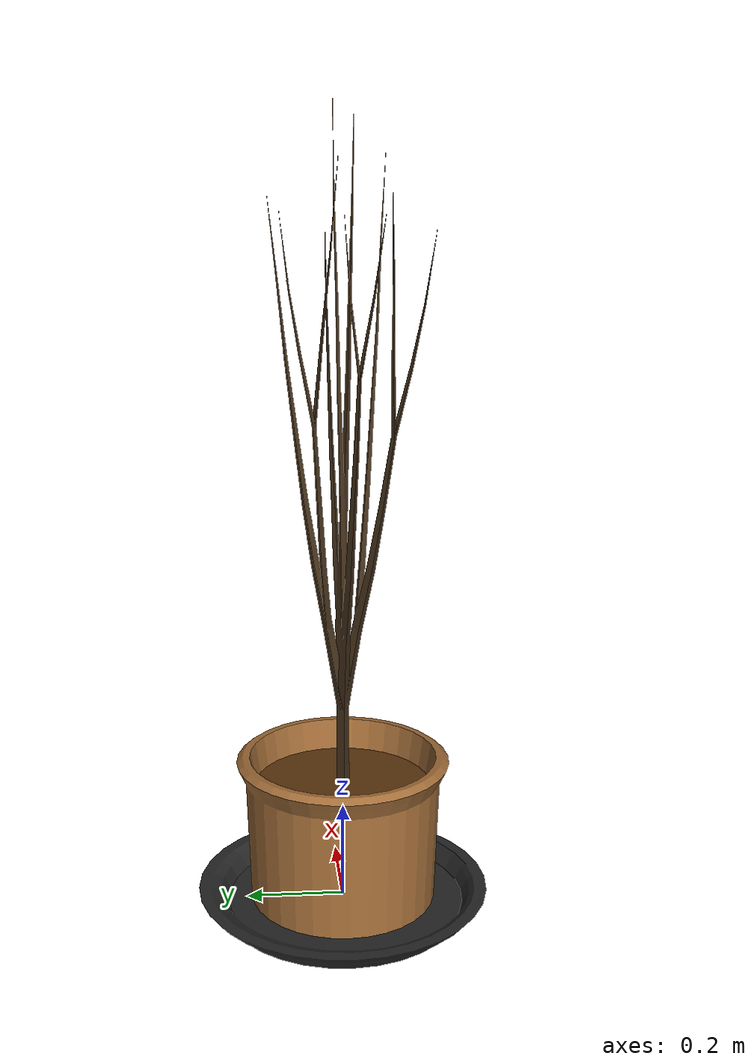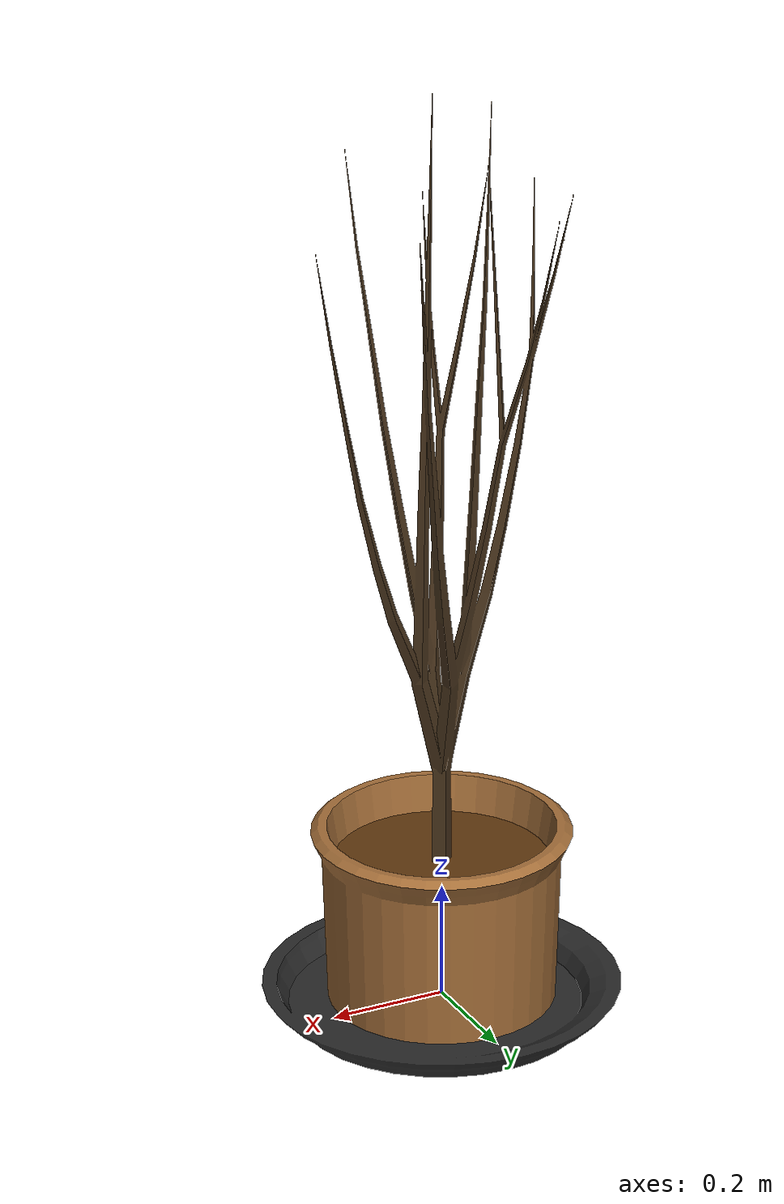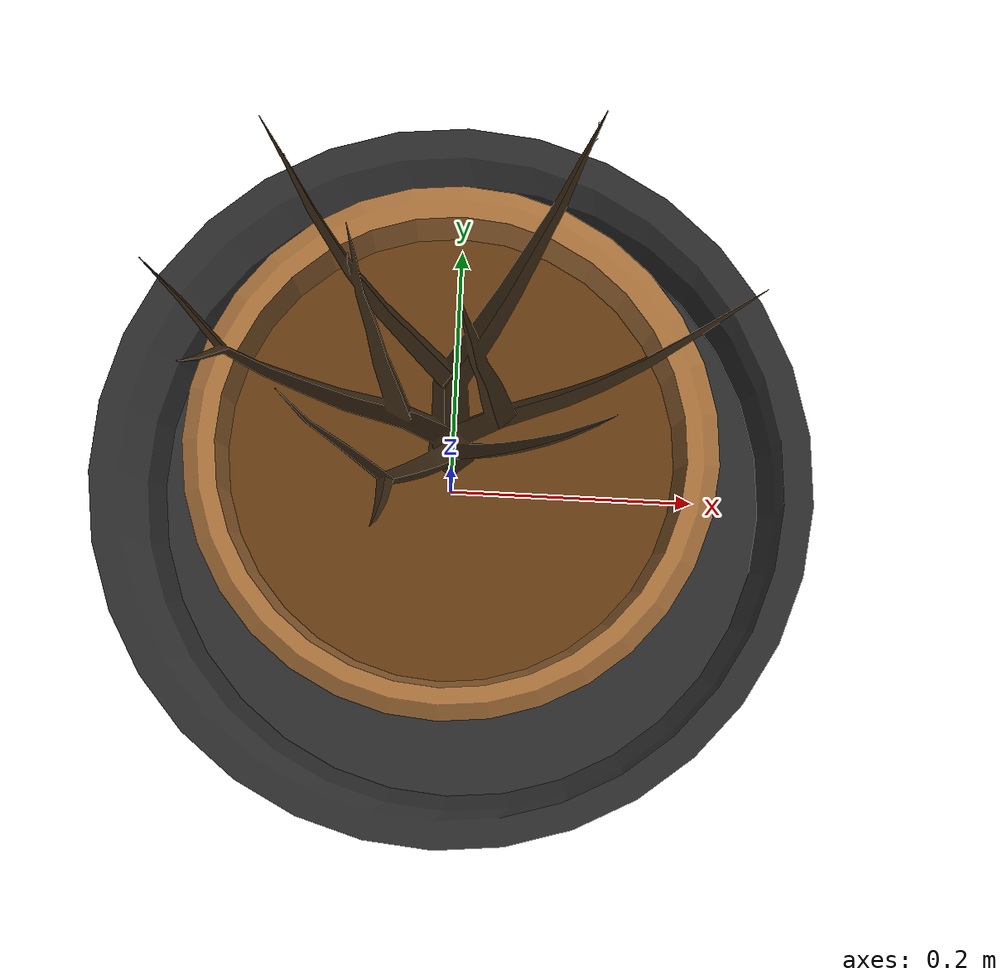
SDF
<?xml version="1.0" ?>
<sdf version="1.6">
  <model name="clf_flowerpot">
    <static>true</static>
    <link name="link">
    <!--   Collision   -->
      <collision name="pot_bottom_collision">
        <geometry>
          <mesh>
            <uri>model://clf_flowerpot/meshes/clf_flowerpot_pot_bottom.dae</uri>
          </mesh>
        </geometry>
      </collision>
      <collision name="pot_top_collision">
        <geometry>
          <mesh>
            <uri>model://clf_flowerpot/meshes/clf_flowerpot_pot_top.dae</uri>
          </mesh>
        </geometry>
      </collision>
      <collision name="dirt_collision">
        <geometry>
          <mesh>
            <uri>model://clf_flowerpot/meshes/clf_flowerpot_dirt.dae</uri>
          </mesh>
        </geometry>
      </collision>
      <collision name="plant_collision">
        <geometry>
          <mesh>
            <uri>model://clf_flowerpot/meshes/clf_flowerpot_plant.dae</uri>
          </mesh>
        </geometry>
      </collision>
      <!--    Visual    -->
      <visual name="pot_bottom_visual">
        <material>
          <ambient>0.16 0.16 0.16 1.0</ambient>
          <diffuse>0.16 0.16 0.16 1.0</diffuse>
          <specular>0 0 0 0</specular>
          <emissive>0 0 0 1</emissive>
        </material>
        <geometry>
          <mesh>
            <uri>model://clf_flowerpot/meshes/clf_flowerpot_pot_bottom.dae</uri>
          </mesh>
        </geometry>
      </visual>
      <visual name="pot_top_visual">
        <material>
          <ambient>0.64 0.43 0.22 1.0</ambient>
          <diffuse>0.64 0.43 0.22 1.0</diffuse>
          <specular>0 0 0 0</specular>
          <emissive>0 0 0 1</emissive>
        </material>
        <geometry>
          <mesh>
            <uri>model://clf_flowerpot/meshes/clf_flowerpot_pot_top.dae</uri>
          </mesh>
        </geometry>
      </visual>
      <visual name="dirt_visual">
        <material>
          <ambient>0.38 0.22 0.06 1.0</ambient>
          <diffuse>0.38 0.22 0.06 1.0</diffuse>
          <specular>0 0 0 0</specular>
          <emissive>0 0 0 1</emissive>
        </material>
      <geometry>
        <mesh>
          <uri>model://clf_flowerpot/meshes/clf_flowerpot_dirt.dae</uri>
        </mesh>
      </geometry>
    </visual>
      <visual name="plant_visual">
        <material>
          <ambient>0.27 0.19 0.1 1.0</ambient>
          <diffuse>0.27 0.19 0.1 1.0</diffuse>
          <specular>0 0 0 0</specular>
          <emissive>0 0 0 1</emissive>
        </material>
      <geometry>
        <mesh>
          <uri>model://clf_flowerpot/meshes/clf_flowerpot_plant.dae</uri>
        </mesh>
      </geometry>
    </visual>
    </link>
  </model>
</sdf>
